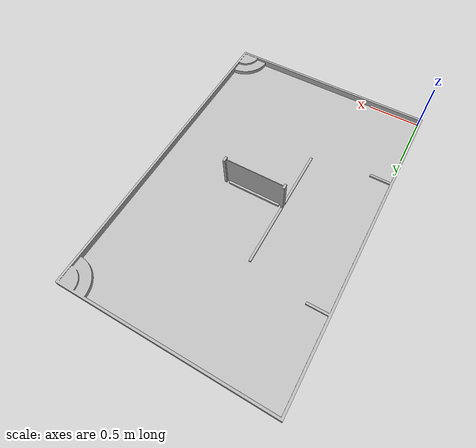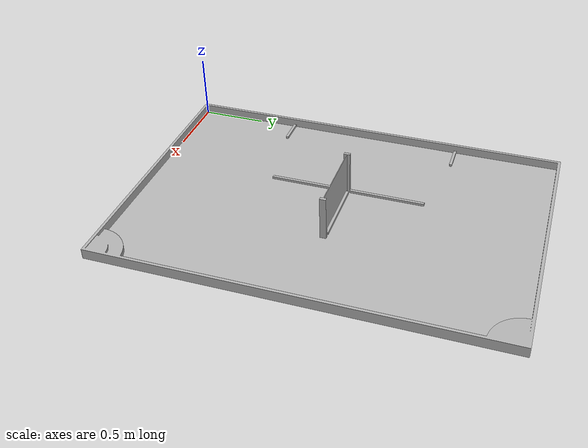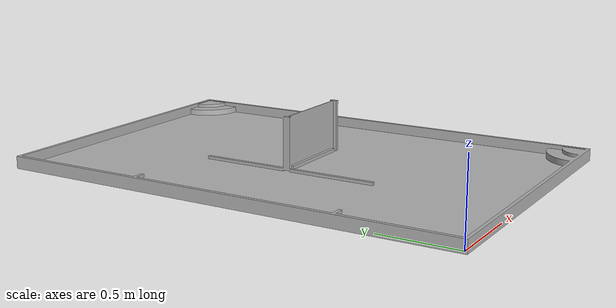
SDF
<?xml version="1.0" ?>
<sdf version="1.5">
  <model name="arene">
    <static>true</static>
    <link name="sol">
      <pose>1 1.5 0.005 0 0 0</pose>
      <collision name="collision">
        <geometry>
          <plane>
            <normal>0 0 0</normal>
            <size>2.0 3.0</size>
          </plane>
        </geometry>
        <surface>
          <friction>
            <ode>
              <mu>100</mu>
              <mu2>50</mu2>
            </ode>
          </friction>
          <contact>
           <ode/>
          </contact>
          <bounce/>
        </surface>
      </collision>
      <visual name="fond">
	    <pose>0 0 0 0 0 0</pose>
 		<cast_shadows>false</cast_shadows>
        <geometry>
          <plane>
            <normal>0 0 1</normal>
            <size>2. 3.</size>
          </plane>
        </geometry>
        <material>
          <script>
            <uri>model://beachbots/materials/scripts/</uri>
            <uri>model://beachbots/materials/textures/</uri>
            <name>Beachbots/Floor</name>
          </script>
        </material>
      </visual>
    </link>
    <!-- Beachbots Arena in 3D -->
      <link name="table">
      	<pose>1.19 1.645 .995 1.5707 0 1.5707</pose>
        <collision name="collision">
          <geometry>
            <mesh>
				<scale>0.001 0.001 0.001</scale>
				<uri>model://beachbots/meshes/table_collision.dae</uri>
            </mesh>
          </geometry>
	<surface>
	  <friction>
	    <ode>
	      <mu>100</mu>
	      <mu2>50</mu2>
	    </ode>
	  </friction>
	</surface>
	</collision>
	<visual name="visual">
      <geometry>
        <mesh>
		  <scale>0.001 0.001 0.001</scale>
			<uri>model://beachbots/meshes/table.dae</uri>
    	</mesh>
      </geometry>
    </visual>
   </link>
  </model>
 </sdf>
